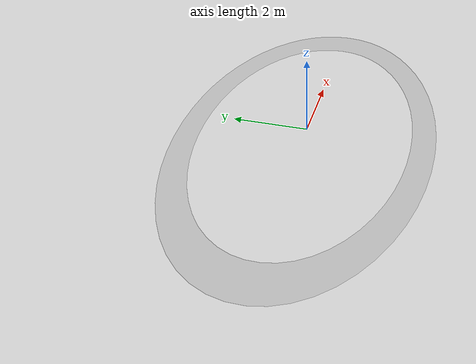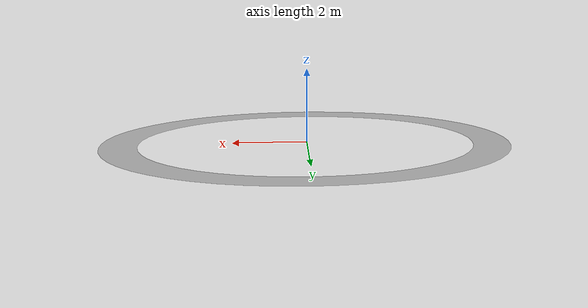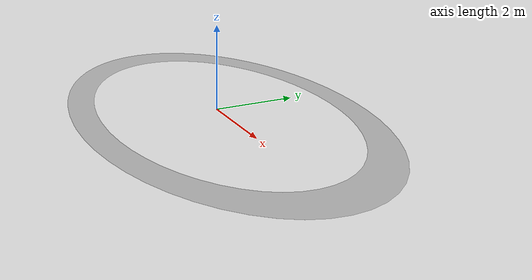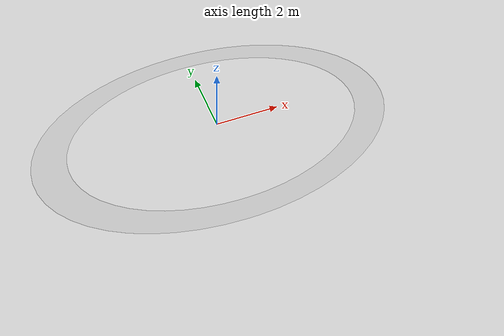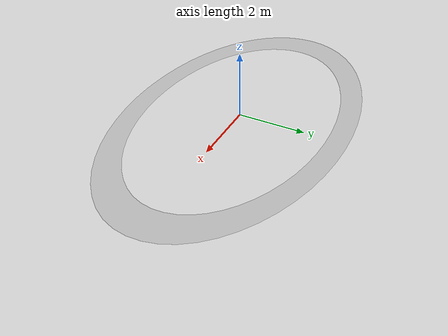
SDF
<?xml version='1.0'?>
<sdf version='1.6'>
  <model name="dirt_path">
	<static>true</static>
	<link name='path'>
		<collision name='collision'>
			<geometry>
				<mesh>
					<uri>model://dirt_path/dirt_path.dae</uri>
				</mesh>
			</geometry>
		</collision>

		<visual name='visual'>
			<cast_shadows>false</cast_shadows>
			<geometry>
				<mesh>
					<uri>model://dirt_path/dirt_path.dae</uri>
				</mesh>
			</geometry>
		</visual>
	</link>
  </model>
</sdf>
